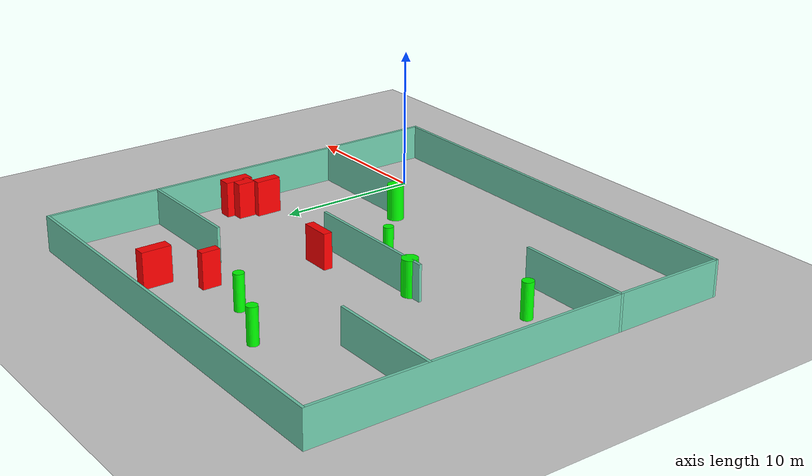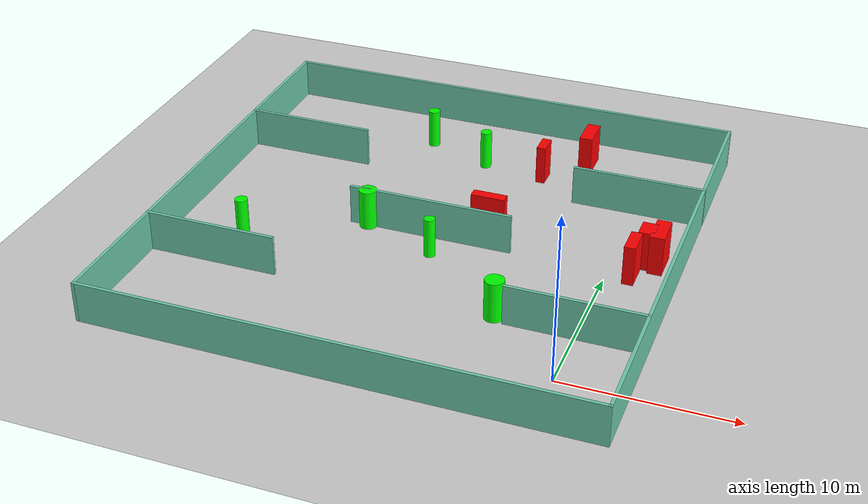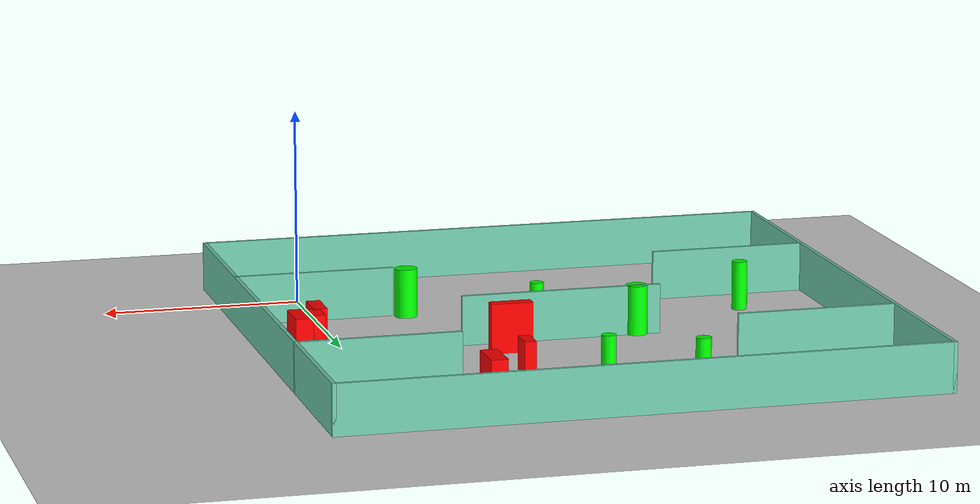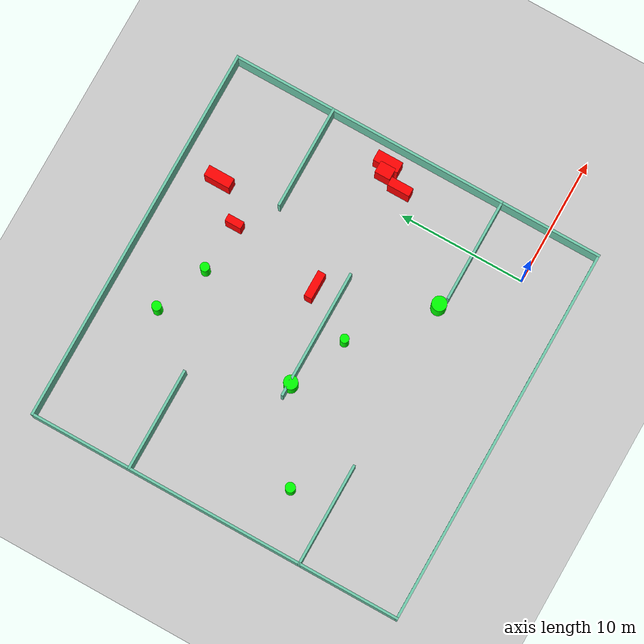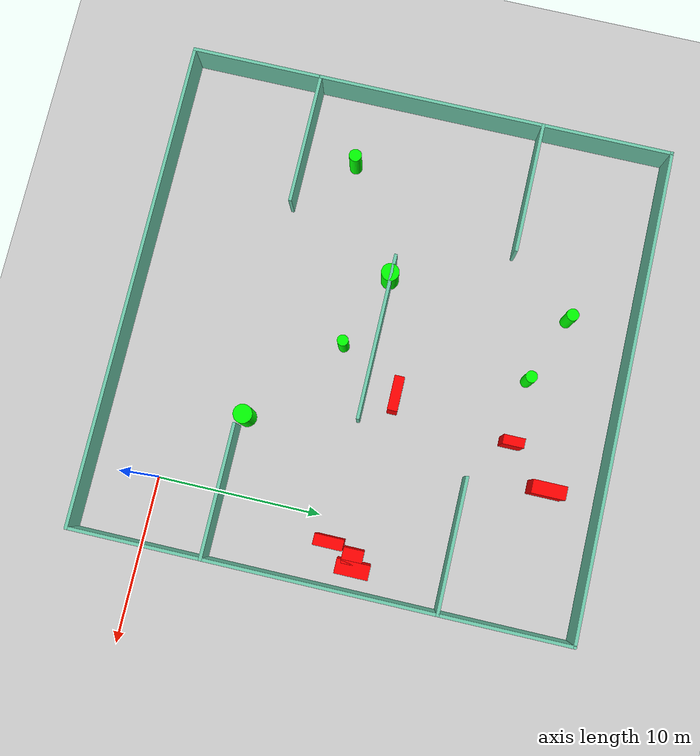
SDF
<sdf version="1.7">
 <world name="default">
  <light name="sun" type="directional">
   <pose>0 0 10 0 -0 0</pose>
   <diffuse>0.8 0.8 0.8 1</diffuse>
   <specular>0.2 0.2 0.2 1</specular>
   <attenuation>
    <range>1000</range>
    <constant>0.9</constant>
    <linear>0.01</linear>
    <quadratic>0.001</quadratic>
   </attenuation>
   <direction>-0.5 0.1 -0.9</direction>
   <spot><inner_angle>0</inner_angle><outer_angle>0</outer_angle><falloff>0</falloff></spot>
  </light>
  <model name="ground_plane">
   <static>1</static>
   <link name="link">
    <collision name="collision">
     <geometry><plane><normal>0 0 1</normal><size>100 100</size></plane></geometry>
     <surface>
      <contact><collide_bitmask>65535</collide_bitmask></contact>
      <friction><ode><mu>100</mu><mu2>50</mu2></ode></friction>
     </surface>
    </collision>
    <visual name="visual">
     <cast_shadows>0</cast_shadows>
     <geometry><plane><normal>0 0 1</normal><size>100 100</size></plane></geometry>
     <material>
      <script><uri>file://media/materials/scripts/gazebo.material</uri><name>Gazebo/Grey</name></script>
     </material>
    </visual>
   </link>
  </model>
  <gravity>0 0 -9.8</gravity>
  <magnetic_field>6e-06 2.3e-05 -4.2e-05</magnetic_field>
  <atmosphere type="adiabatic"/>
  <physics type="ode">
   <max_step_size>0.001</max_step_size>
   <real_time_factor>1</real_time_factor>
   <real_time_update_rate>1000</real_time_update_rate>
  </physics>
  <scene><ambient>0.4 0.4 0.4 1</ambient><background>0.7 0.7 0.7 1</background><shadows>1</shadows></scene>
  <spherical_coordinates>
   <surface_model>EARTH_WGS84</surface_model>
   <latitude_deg>0</latitude_deg>
   <longitude_deg>0</longitude_deg>
   <elevation>0</elevation>
   <heading_deg>0</heading_deg>
  </spherical_coordinates>
  <model name="my_base_walls">
   <link name="Wall_10">
    <collision name="Wall_10_Collision">
     <geometry><box><size>8.2 0.2 2.5</size></box></geometry>
     <pose>0 0 1.25 0 -0 0</pose>
    </collision>
    <visual name="Wall_10_Visual">
     <pose>0 0 1.25 0 -0 0</pose>
     <geometry><box><size>8.2 0.2 2.5</size></box></geometry>
     <material>
      <script><uri>file://media/materials/scripts/gazebo.material</uri><name>Gazebo/Grey</name></script>
      <ambient>0.435294 0.796078 0.67451 1</ambient>
     </material>
     <meta><layer>0</layer></meta>
    </visual>
    <pose>-11 -7 0 0 -0 0</pose>
   </link>
   <link name="Wall_12">
    <collision name="Wall_12_Collision">
     <geometry><box><size>8.2 0.2 2.5</size></box></geometry>
     <pose>0 0 1.25 0 -0 0</pose>
    </collision>
    <visual name="Wall_12_Visual">
     <pose>0 0 1.25 0 -0 0</pose>
     <geometry><box><size>8.2 0.2 2.5</size></box></geometry>
     <material>
      <script><uri>file://media/materials/scripts/gazebo.material</uri><name>Gazebo/Grey</name></script>
      <ambient>0.435294 0.796078 0.67451 1</ambient>
     </material>
     <meta><layer>0</layer></meta>
    </visual>
    <pose>-11 7 0 0 -0 0</pose>
   </link>
   <link name="Wall_14">
    <collision name="Wall_14_Collision">
     <geometry><box><size>8.2 0.2 2.5</size></box></geometry>
     <pose>0 0 1.25 0 -0 0</pose>
    </collision>
    <visual name="Wall_14_Visual">
     <pose>0 0 1.25 0 -0 0</pose>
     <geometry><box><size>8.2 0.2 2.5</size></box></geometry>
     <material>
      <script><uri>file://media/materials/scripts/gazebo.material</uri><name>Gazebo/Grey</name></script>
      <ambient>0.435294 0.796078 0.67451 1</ambient>
     </material>
     <meta><layer>0</layer></meta>
    </visual>
    <pose>11 7 0 0 -0 3.14159</pose>
   </link>
   <link name="Wall_16">
    <collision name="Wall_16_Collision">
     <geometry><box><size>10.2 0.2 2.5</size></box></geometry>
     <pose>0 0 1.25 0 -0 0</pose>
    </collision>
    <visual name="Wall_16_Visual">
     <pose>0 0 1.25 0 -0 0</pose>
     <geometry><box><size>10.2 0.2 2.5</size></box></geometry>
     <material>
      <script><uri>file://media/materials/scripts/gazebo.material</uri><name>Gazebo/Grey</name></script>
      <ambient>0.435294 0.796078 0.67451 1</ambient>
     </material>
     <meta><layer>0</layer></meta>
    </visual>
    <pose>0 0 0 0 -0 3.14159</pose>
   </link>
   <link name="Wall_2">
    <collision name="Wall_2_Collision">
     <geometry><box><size>30.2 0.2 2.5</size></box></geometry>
     <pose>0 0 1.25 0 -0 0</pose>
    </collision>
    <visual name="Wall_2_Visual">
     <pose>0 0 1.25 0 -0 0</pose>
     <geometry><box><size>30.2 0.2 2.5</size></box></geometry>
     <material>
      <script><uri>file://media/materials/scripts/gazebo.material</uri><name>Gazebo/Grey</name></script>
      <ambient>0.435294 0.796078 0.67451 1</ambient>
     </material>
     <meta><layer>0</layer></meta>
    </visual>
    <pose>0 -15 0 0 -0 3.14159</pose>
   </link>
   <link name="Wall_3">
    <collision name="Wall_3_Collision">
     <geometry><box><size>30.2 0.2 2.5</size></box></geometry>
     <pose>0 0 1.25 0 -0 0</pose>
    </collision>
    <visual name="Wall_3_Visual">
     <pose>0 0 1.25 0 -0 0</pose>
     <geometry><box><size>30.2 0.2 2.5</size></box></geometry>
     <material>
      <script><uri>file://media/materials/scripts/gazebo.material</uri><name>Gazebo/Grey</name></script>
      <ambient>0.435294 0.796078 0.67451 1</ambient>
     </material>
     <meta><layer>0</layer></meta>
    </visual>
    <pose>-15 0 0 0 -0 1.5708</pose>
   </link>
   <link name="Wall_4">
    <collision name="Wall_4_Collision">
     <geometry><box><size>30.2 0.2 2.5</size></box></geometry>
     <pose>0 0 1.25 0 -0 0</pose>
    </collision>
    <visual name="Wall_4_Visual">
     <pose>0 0 1.25 0 -0 0</pose>
     <geometry><box><size>30.2 0.2 2.5</size></box></geometry>
     <material>
      <script><uri>file://media/materials/scripts/gazebo.material</uri><name>Gazebo/Grey</name></script>
      <ambient>0.435294 0.796078 0.67451 1</ambient>
     </material>
     <meta><layer>0</layer></meta>
    </visual>
    <pose>0 15 0 0 -0 0</pose>
   </link>
   <link name="Wall_6">
    <collision name="Wall_6_Collision">
     <geometry><box><size>30.2 0.2 2.5</size></box></geometry>
     <pose>0 0 1.25 0 -0 0</pose>
    </collision>
    <visual name="Wall_6_Visual">
     <pose>0 0 1.25 0 -0 0</pose>
     <geometry><box><size>30.2 0.2 2.5</size></box></geometry>
     <material>
      <script><uri>file://media/materials/scripts/gazebo.material</uri><name>Gazebo/Grey</name></script>
      <ambient>0.435294 0.796078 0.67451 1</ambient>
     </material>
     <meta><layer>0</layer></meta>
    </visual>
    <pose>15 0 0 0 -0 1.5708</pose>
   </link>
   <link name="Wall_8">
    <collision name="Wall_8_Collision">
     <geometry><box><size>8.2 0.2 2.5</size></box></geometry>
     <pose>0 0 1.25 0 -0 0</pose>
    </collision>
    <visual name="Wall_8_Visual">
     <pose>0 0 1.25 0 -0 0</pose>
     <geometry><box><size>8.2 0.2 2.5</size></box></geometry>
     <material>
      <script><uri>file://media/materials/scripts/gazebo.material</uri><name>Gazebo/Grey</name></script>
      <ambient>0.435294 0.796078 0.67451 1</ambient>
     </material>
     <meta><layer>0</layer></meta>
    </visual>
    <pose>11 -7 0 0 -0 3.14159</pose>
   </link>
   <static>1</static>
   <pose>-11 11 0 0 -0 0</pose>
  </model>
  <model name="cylinder1">
   <static>1</static>
   <link name="link">
    <inertial>
     <mass>1</mass>
     <inertia><ixx>0.5</ixx><ixy>0</ixy><ixz>0</ixz><iyy>0.5</iyy><iyz>0</iyz><izz>1</izz></inertia>
    </inertial>
    <collision name="collision">
     <geometry><cylinder><radius>0.38986689434073596</radius><length>2.5</length></cylinder></geometry>
    </collision>
    <visual name="visual">
     <geometry><cylinder><radius>0.38986689434073596</radius><length>2.5</length></cylinder></geometry>
     <material>
      <ambient>0 1 0 1</ambient>
      <diffuse>0 1 0 1</diffuse>
      <specular>0.1 0.1 0.1 1</specular>
      <emissive>0 0 0 0</emissive>
     </material>
    </visual>
   </link>
   <pose>-21.560766859917358 7.22179948356241 1.25 0 0 0</pose>
  </model>
  <model name="cylinder2">
   <static>1</static>
   <link name="link">
    <inertial>
     <mass>1</mass>
     <inertia><ixx>0.5</ixx><ixy>0</ixy><ixz>0</ixz><iyy>0.5</iyy><iyz>0</iyz><izz>1</izz></inertia>
    </inertial>
    <collision name="collision">
     <geometry><cylinder><radius>0.5785039407339034</radius><length>2.5</length></cylinder></geometry>
    </collision>
    <visual name="visual">
     <geometry><cylinder><radius>0.5785039407339034</radius><length>2.5</length></cylinder></geometry>
     <material>
      <ambient>0 1 0 1</ambient>
      <diffuse>0 1 0 1</diffuse>
      <specular>0.1 0.1 0.1 1</specular>
      <emissive>0 0 0 0</emissive>
     </material>
    </visual>
   </link>
   <pose>-4.701571305625624 4.352606428902023 1.25 0 0 0</pose>
  </model>
  <model name="cylinder3">
   <static>1</static>
   <link name="link">
    <inertial>
     <mass>1</mass>
     <inertia><ixx>0.5</ixx><ixy>0</ixy><ixz>0</ixz><iyy>0.5</iyy><iyz>0</iyz><izz>1</izz></inertia>
    </inertial>
    <collision name="collision">
     <geometry><cylinder><radius>0.37369013502329373</radius><length>2.5</length></cylinder></geometry>
    </collision>
    <visual name="visual">
     <geometry><cylinder><radius>0.37369013502329373</radius><length>2.5</length></cylinder></geometry>
     <material>
      <ambient>0 1 0 1</ambient>
      <diffuse>0 1 0 1</diffuse>
      <specular>0.1 0.1 0.1 1</specular>
      <emissive>0 0 0 0</emissive>
     </material>
    </visual>
   </link>
   <pose>-14.833921504861491 22.091477320194244 1.25 0 0 0</pose>
  </model>
  <model name="cylinder4">
   <static>1</static>
   <link name="link">
    <inertial>
     <mass>1</mass>
     <inertia><ixx>0.5</ixx><ixy>0</ixy><ixz>0</ixz><iyy>0.5</iyy><iyz>0</iyz><izz>1</izz></inertia>
    </inertial>
    <collision name="collision">
     <geometry><cylinder><radius>0.3437007841068653</radius><length>2.5</length></cylinder></geometry>
    </collision>
    <visual name="visual">
     <geometry><cylinder><radius>0.3437007841068653</radius><length>2.5</length></cylinder></geometry>
     <material>
      <ambient>0 1 0 1</ambient>
      <diffuse>0 1 0 1</diffuse>
      <specular>0.1 0.1 0.1 1</specular>
      <emissive>0 0 0 0</emissive>
     </material>
    </visual>
   </link>
   <pose>-10.268233853500869 9.084347426472501 1.25 0 0 0</pose>
  </model>
  <model name="cylinder5">
   <static>1</static>
   <link name="link">
    <inertial>
     <mass>1</mass>
     <inertia><ixx>0.5</ixx><ixy>0</ixy><ixz>0</ixz><iyy>0.5</iyy><iyz>0</iyz><izz>1</izz></inertia>
    </inertial>
    <collision name="collision">
     <geometry><cylinder><radius>0.35887754035102415</radius><length>2.5</length></cylinder></geometry>
    </collision>
    <visual name="visual">
     <geometry><cylinder><radius>0.35887754035102415</radius><length>2.5</length></cylinder></geometry>
     <material>
      <ambient>0 1 0 1</ambient>
      <diffuse>0 1 0 1</diffuse>
      <specular>0.1 0.1 0.1 1</specular>
      <emissive>0 0 0 0</emissive>
     </material>
    </visual>
   </link>
   <pose>-10.648964472469267 20.451333952501955 1.25 0 0 0</pose>
  </model>
  <model name="cylinder6">
   <static>1</static>
   <link name="link">
    <inertial>
     <mass>1</mass>
     <inertia><ixx>0.5</ixx><ixy>0</ixy><ixz>0</ixz><iyy>0.5</iyy><iyz>0</iyz><izz>1</izz></inertia>
    </inertial>
    <collision name="collision">
     <geometry><cylinder><radius>0.545721064254021</radius><length>2.5</length></cylinder></geometry>
    </collision>
    <visual name="visual">
     <geometry><cylinder><radius>0.545721064254021</radius><length>2.5</length></cylinder></geometry>
     <material>
      <ambient>0 1 0 1</ambient>
      <diffuse>0 1 0 1</diffuse>
      <specular>0.1 0.1 0.1 1</specular>
      <emissive>0 0 0 0</emissive>
     </material>
    </visual>
   </link>
   <pose>-14.936635863218578 10.912867609226454 1.25 0 0 0</pose>
  </model>
  <model name="box1">
   <static>1</static>
   <link name="link">
    <inertial>
     <mass>1</mass>
     <inertia><ixx>0.083</ixx><ixy>0</ixy><ixz>0</ixz><iyy>0.083</iyy><iyz>0</iyz><izz>0.083</izz></inertia>
    </inertial>
    <collision name="collision">
     <geometry><box><size>0.5753723492557535 1.3022590416079591 2.5</size></box></geometry>
    </collision>
    <visual name="visual">
     <geometry><box><size>0.5753723492557535 1.3022590416079591 2.5</size></box></geometry>
     <material>
      <ambient>1 0 0 1</ambient>
      <diffuse>1 0 0 1</diffuse>
      <specular>0.1 0.1 0.1 1</specular>
      <emissive>0 0 0 0</emissive>
     </material>
    </visual>
    <sensor name="my_contact" type="contact">
     <contact><collision>box_collision</collision><topic>__default_topic__</topic></contact>
    </sensor>
   </link>
   <pose>-6.695044148558836 20.216066798090697 1.25 0 0 0</pose>
  </model>
  <model name="box2">
   <static>1</static>
   <link name="link">
    <inertial>
     <mass>1</mass>
     <inertia><ixx>0.083</ixx><ixy>0</ixy><ixz>0</ixz><iyy>0.083</iyy><iyz>0</iyz><izz>0.083</izz></inertia>
    </inertial>
    <collision name="collision">
     <geometry><box><size>2.09578350643296 0.6194126815194752 2.5</size></box></geometry>
    </collision>
    <visual name="visual">
     <geometry><box><size>2.09578350643296 0.6194126815194752 2.5</size></box></geometry>
     <material>
      <ambient>1 0 0 1</ambient>
      <diffuse>1 0 0 1</diffuse>
      <specular>0.1 0.1 0.1 1</specular>
      <emissive>0 0 0 0</emissive>
     </material>
    </visual>
    <sensor name="my_contact" type="contact">
     <contact><collision>box_collision</collision><topic>__default_topic__</topic></contact>
    </sensor>
   </link>
   <pose>-7.899936406846869 12.866539749042996 1.25 0 0 0</pose>
  </model>
  <model name="box3">
   <static>1</static>
   <link name="link">
    <inertial>
     <mass>1</mass>
     <inertia><ixx>0.083</ixx><ixy>0</ixy><ixz>0</ixz><iyy>0.083</iyy><iyz>0</iyz><izz>0.083</izz></inertia>
    </inertial>
    <collision name="collision">
     <geometry><box><size>0.6774776814954417 1.7754653140643726 2.5</size></box></geometry>
    </collision>
    <visual name="visual">
     <geometry><box><size>0.6774776814954417 1.7754653140643726 2.5</size></box></geometry>
     <material>
      <ambient>1 0 0 1</ambient>
      <diffuse>1 0 0 1</diffuse>
      <specular>0.1 0.1 0.1 1</specular>
      <emissive>0 0 0 0</emissive>
     </material>
    </visual>
    <sensor name="my_contact" type="contact">
     <contact><collision>box_collision</collision><topic>__default_topic__</topic></contact>
    </sensor>
   </link>
   <pose>1.4065863701197578 10.971345332096032 1.25 0 0 0</pose>
  </model>
  <model name="box4">
   <static>1</static>
   <link name="link">
    <inertial>
     <mass>1</mass>
     <inertia><ixx>0.083</ixx><ixy>0</ixy><ixz>0</ixz><iyy>0.083</iyy><iyz>0</iyz><izz>0.083</izz></inertia>
    </inertial>
    <collision name="collision">
     <geometry><box><size>0.9360392636721173 1.2289571975383422 2.5</size></box></geometry>
    </collision>
    <visual name="visual">
     <geometry><box><size>0.9360392636721173 1.2289571975383422 2.5</size></box></geometry>
     <material>
      <ambient>1 0 0 1</ambient>
      <diffuse>1 0 0 1</diffuse>
      <specular>0.1 0.1 0.1 1</specular>
      <emissive>0 0 0 0</emissive>
     </material>
    </visual>
    <sensor name="my_contact" type="contact">
     <contact><collision>box_collision</collision><topic>__default_topic__</topic></contact>
    </sensor>
   </link>
   <pose>1.915683626045812 12.516366959063273 1.25 0 0 0</pose>
  </model>
  <model name="box5">
   <static>1</static>
   <link name="link">
    <inertial>
     <mass>1</mass>
     <inertia><ixx>0.083</ixx><ixy>0</ixy><ixz>0</ixz><iyy>0.083</iyy><iyz>0</iyz><izz>0.083</izz></inertia>
    </inertial>
    <collision name="collision">
     <geometry><box><size>0.8759621914829658 2.0077724062011137 2.5</size></box></geometry>
    </collision>
    <visual name="visual">
     <geometry><box><size>0.8759621914829658 2.0077724062011137 2.5</size></box></geometry>
     <material>
      <ambient>1 0 0 1</ambient>
      <diffuse>1 0 0 1</diffuse>
      <specular>0.1 0.1 0.1 1</specular>
      <emissive>0 0 0 0</emissive>
     </material>
    </visual>
    <sensor name="my_contact" type="contact">
     <contact><collision>box_collision</collision><topic>__default_topic__</topic></contact>
    </sensor>
   </link>
   <pose>2.6006355756357884 12.661056796722903 1.25 0 0 0</pose>
  </model>
  <model name="box6">
   <static>1</static>
   <link name="link">
    <inertial>
     <mass>1</mass>
     <inertia><ixx>0.083</ixx><ixy>0</ixy><ixz>0</ixz><iyy>0.083</iyy><iyz>0</iyz><izz>0.083</izz></inertia>
    </inertial>
    <collision name="collision">
     <geometry><box><size>0.8242221633290907 2.0615054133440696 2.5</size></box></geometry>
    </collision>
    <visual name="visual">
     <geometry><box><size>0.8242221633290907 2.0615054133440696 2.5</size></box></geometry>
     <material>
      <ambient>1 0 0 1</ambient>
      <diffuse>1 0 0 1</diffuse>
      <specular>0.1 0.1 0.1 1</specular>
      <emissive>0 0 0 0</emissive>
     </material>
    </visual>
    <sensor name="my_contact" type="contact">
     <contact><collision>box_collision</collision><topic>__default_topic__</topic></contact>
    </sensor>
   </link>
   <pose>-4.390590985377974 22.802221705129213 1.25 0 0 0</pose>
  </model>
 </world>
</sdf>
